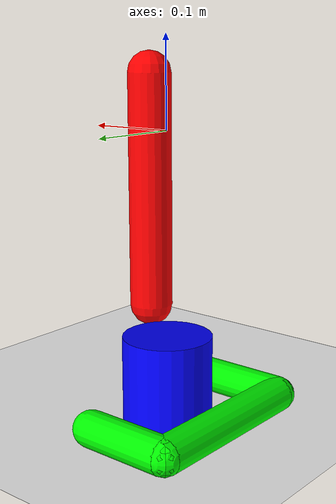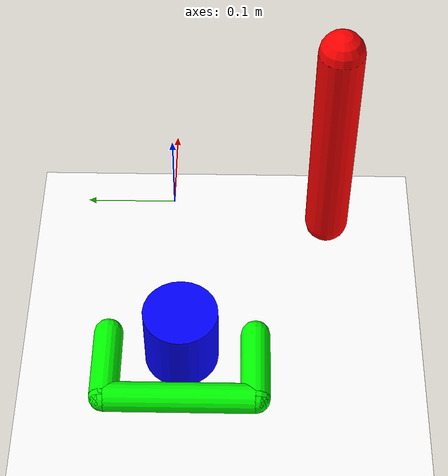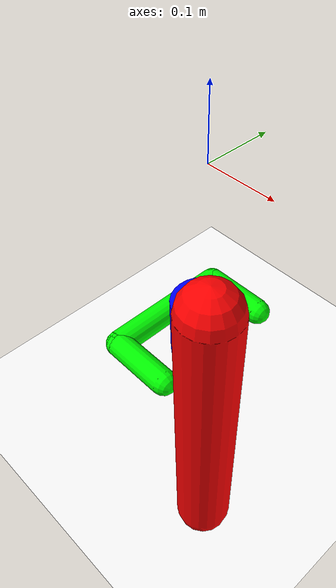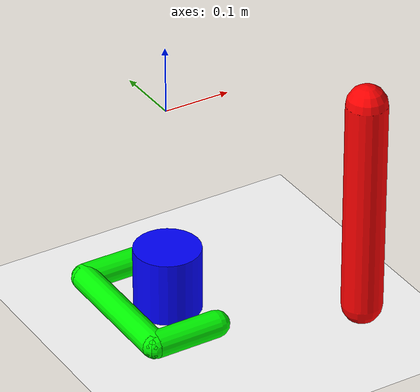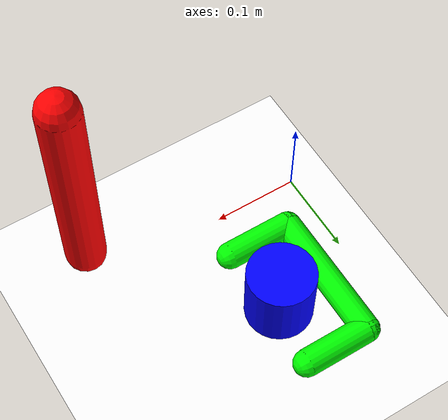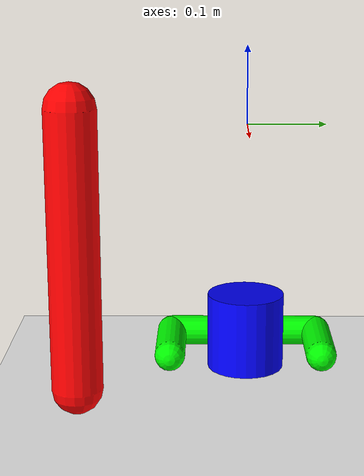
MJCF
<mujoco model="arm3d">
  <compiler inertiafromgeom="true" angle="radian" coordinate="local"/>
  <option timestep="0.01" gravity="0 0 0" iterations="20" integrator="Euler" />

  <default>
    <joint armature='0.04' damping="1" limited="true"/>
    <geom friction=".8 .1 .1" density="300" margin="0.002" condim="1" contype="0" conaffinity="0"/>
  </default>

   <size nstack="1000000"/>

   <asset>
      <texture type="skybox" builtin="gradient" width="128" height="128" rgb1=".4 .6 .8"
         rgb2="0 0 0"/>
      <texture name="texgeom" type="cube" builtin="flat" mark="cross" width="127" height="1278"
         rgb1="0.8 0.6 0.4" rgb2="0.8 0.6 0.4" markrgb="1 1 1" random="0.01"/>
      <texture name="texplane" type="2d" builtin="checker" rgb1=".2 .3 .4" rgb2=".1 0.15 0.2"
         width="512" height="512"/>

      <material name='MatPlane' reflectance='0.3' texture="texplane" texrepeat="1 1" texuniform="true"/>
      <material name='geom' texture="texgeom" texuniform="true"/>
   </asset>

  <worldbody>
    <geom name="table" rgba="1 1 1 1" type="plane" pos="0 0.5 -0.325" size="1 1 0.1" contype="1" conaffinity="1"/>

    <body name="pusher" pos="-0.08 0.0 -0.305">
      <body name="r_wrist_flex_link" pos="0 0 0">
        <geom name="wf" rgba="0 1 0 1" type="capsule" fromto="0 -0.02 0 0 0.02 0" size="0.01" />
        <joint name="push_slidex" type="slide" pos="0 0 0" axis="1 0 0" range="-10.3213 10.3" damping="0.1"/>
        <joint name="push_slidey" type="slide" pos="0 0 0" axis="0 1 0" range="-10.3213 10.3" damping="0.1"/>
        <joint name="push_hinge"  type="hinge" pos="0 0 0" axis="0 0 1" range="-1000. 1000.0" damping="0.1"/>
        <body name="r_wrist_roll_link" pos="0 0 0">
          <body name="tips_arm" pos="0 0 0">
            <geom name="tip_arml" type="sphere" pos="0.1 -0.1 0." size="0.01" />
            <geom name="tip_armr" type="sphere" pos="0.1 0.1 0." size="0.01" />
          </body>
          <geom type="capsule" rgba="0 1 0 1"  fromto="0 -0.1 0. 0.0 +0.1 0" size="0.02" contype="1" conaffinity="1" />
          <geom type="capsule" rgba="0 1 0 1"  fromto="0 -0.1 0. 0.1 -0.1 0" size="0.02" contype="1" conaffinity="1" />
          <geom type="capsule" rgba="0 1 0 1"  fromto="0 +0.1 0. 0.1 +0.1 0." size="0.02" contype="1" conaffinity="1" />
        </body>
      </body>
    </body>

    <body name="object" pos="0.0 0.0 -0.275" >
      <geom rgba="0 0 1 0" type="sphere" size="0.05 0.05 0.05" density="0.00001" conaffinity="0"/>
      <geom rgba="0 0 1 1" type="cylinder" size="0.05 0.05 0.05" density="0.00001" contype="1" conaffinity="0"/>
      <joint name="obj_slidex" type="slide" pos="0 0 0" axis="1 0 0" range="-10.3213 10.3" damping="0.5"/>
      <joint name="obj_slidey" type="slide" pos="0 0 0" axis="0 1 0" range="-10.3213 10.3" damping="0.5"/>
    </body>

    <geom name='target' rgba="1 0 0 1"  type='capsule' fromto='0.2 -0.2 -0.275 0.2 -0.2 0.05'  size='0.03' contype='0' conaffinity='0'/>

  </worldbody>

  <actuator>
    <motor ctrllimited="true" ctrlrange="-1.0 1.0" gear="0.05" joint="push_slidex"/>
    <motor ctrllimited="true" ctrlrange="-1.0 1.0" gear="0.08" joint="push_slidey"/>
    <motor ctrllimited="true" ctrlrange="-1.0 1.0" gear="0.01" joint="push_hinge"/>
  </actuator>
</mujoco>
